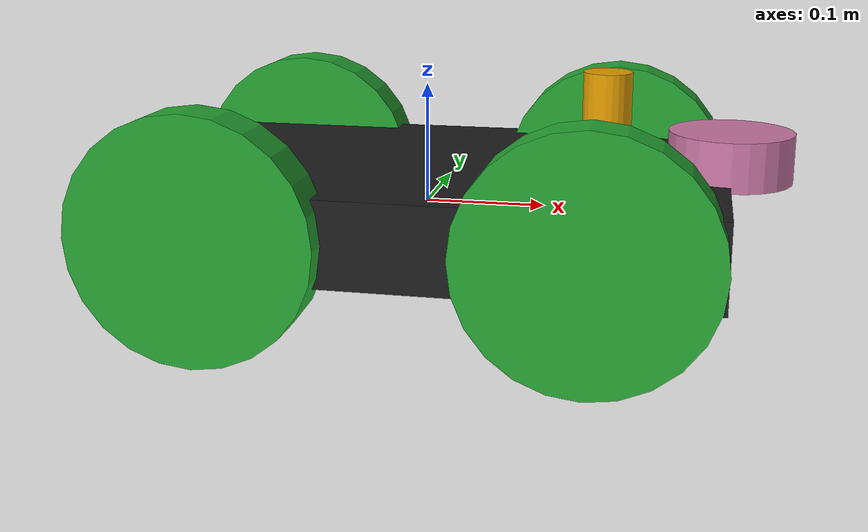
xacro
<?xml version="1.0" ?>

<robot name="skid_steer_bot" xmlns:xacro="http://www.ros.org/wiki/xacro">

  <xacro:include filename="$(find lidskid)/urdf/materials.xacro"/>
  <xacro:include filename="$(find lidskid)/urdf/steer.gazebo"/>

  <link name="base_link"/>

  <joint name="base_joint" type="fixed">
    <parent link="base_link"/>
    <child link="link_chassis"/>
  </joint>

  <!-- defining wheels -->
  <xacro:include filename="macro.xacro"/>

  <!-- Hokuyo Laser -->
  <link name="hokuyo_link">
    <collision>
      <origin xyz="0 0 0" rpy="0 0 0"/>
      <geometry>
    <cylinder length="0.04" radius="0.05"/>
      </geometry>
    </collision>

    <visual>
      <origin xyz="0 0 0" rpy="0 0 0"/>
      <geometry>
        <cylinder length="0.04" radius="0.05"/>
      </geometry>
    </visual>

    <inertial>
      <mass value="1e-3" />
      <inertia ixx="1e-3" ixy="0" ixz="0" iyy="1e-3" iyz="0" izz="1e-3" />
    </inertial>
  </link>

  <joint name="hokuyo_joint" type="fixed">
    <origin xyz="0.25 0 0.05" rpy="0 0 0"/>
    <parent link="link_chassis"/>
    <child link="hokuyo_link"/>
  </joint>
    <!-- GPS -->
  <link name="gps_link">
  </link>

  <joint name="gps_joint" type="fixed">
    <origin xyz="0.25 0 0.05" rpy="0 0 0"/>
    <parent link="link_chassis"/>
    <child link="gps_link"/>
  </joint>

  <!--Kinect Depth Camera-->
  <link name="kinect_link">
    <collision>
      <origin xyz="0 0 0" rpy="0 0 0"/>
      <geometry>
    <cylinder length="0.09" radius="0.02"/>
      </geometry>
    </collision>

    <visual>
       <origin xyz="0 0 0" rpy="0 0 0"/>
      <geometry>
    <cylinder length="0.09" radius="0.02"/>
     </geometry>
    </visual>

    <inertial>
      <mass value="1"/>
       <inertia ixx="1" ixy="0" ixz="0" iyy="1" iyz="0" izz="1" />
    </inertial>
  </link>

  <joint name="kinect_joint" type="fixed">
    <origin xyz="0.15 0 0.07" rpy="0 0 0"/>
    <parent link="link_chassis"/>
    <child link="kinect_link"/>
  </joint>

</robot>

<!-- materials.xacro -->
<robot name="skid_steer_bot" xmlns:xacro="http://www.ros.org/wiki/xacro">
  <material name="black">
    <color rgba="0.0 0.0 0.0 1.0"/>
  </material>
  <material name="blue">
    <color rgba="0.203125 0.23828125 0.28515625 1.0"/>
  </material>
  <material name="green">
    <color rgba="0.0 0.8 0.0 1.0"/>
  </material>
  <material name="grey">
    <color rgba="0.2 0.2 0.2 1.0"/>
  </material>
  <material name="orange">
    <color rgba="1.0 0.423529411765 0.0392156862745 1.0"/>
  </material>
  <material name="brown">
    <color rgba="0.870588235294 0.811764705882 0.764705882353 1.0"/>
  </material>
  <material name="red">
    <color rgba="0.80078125 0.12890625 0.1328125 1.0"/>
  </material>
  <material name="white">
    <color rgba="1.0 1.0 1.0 1.0"/>
  </material>

  <gazebo reference="link_chassis">
    <material>Gazebo/Black</material>
  </gazebo>
  <gazebo reference="link_front_left_wheel">
    <material>Gazebo/Green</material>
  </gazebo>
  <gazebo reference="link_front_right_wheel">
    <material>Gazebo/Green</material>
  </gazebo>
  <gazebo reference="link_back_right_wheel">
    <material>Gazebo/Green</material>
  </gazebo>
  <gazebo reference="link_back_left_wheel">
    <material>Gazebo/Green</material>
  </gazebo>

  </robot>

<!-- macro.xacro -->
<robot xmlns:xacro="http://ros.org/wiki/xacro">
  <xacro:property name="wheel_radius" value="0.1" />
  <xacro:property name="wheel_width" value="0.04" />

  <xacro:include filename="wheels.xacro" />

  <xacro:link_macro />

  <xacro:wheel suffix="front_left" mass="0.2" wheel_radius="${wheel_radius}"
    wheel_width="${wheel_width}" >
    <origin rpy="0 1.5707 1.5707" xyz="0 0 0"/>
    <origin xyz="0.15 0.15 0" rpy="0 0 0"/>
  </xacro:wheel>
  <xacro:wheel suffix="front_right" mass="0.2" wheel_radius="${wheel_radius}"
    wheel_width="${wheel_width}" >
    <origin rpy="0 1.5707 1.5707" xyz="0 0 0"/>
    <origin xyz="0.15 -0.15 0" rpy="0 0 0"/>
  </xacro:wheel>
  <xacro:wheel suffix="back_left" mass="0.2" wheel_radius="${wheel_radius}"
    wheel_width="${wheel_width}" >
    <origin rpy="0 1.5707 1.5707" xyz="0 0 0"/>
    <origin xyz="-0.15 0.15 0" rpy="0 0 0"/>
  </xacro:wheel>
  <xacro:wheel suffix="back_right" mass="0.2" wheel_radius="${wheel_radius}"
    wheel_width="${wheel_width}" >
    <origin rpy="0 1.5707 1.5707" xyz="0 0 0"/>
    <origin xyz="-0.15 -0.15 0" rpy="0 0 0"/>
  </xacro:wheel>
</robot>

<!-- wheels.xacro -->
<robot xmlns:xacro="http://ros.org/wiki/xacro">
  <xacro:macro name="wheel" params="suffix mass wheel_radius wheel_width
    *link_origin *joint_origin">
    <link name="link_${suffix}_wheel">
      <inertial>
        <mass value="${mass}"/>
        <xacro:insert_block name="link_origin"/>
        <inertia ixx="${(1/12)*mass*
          (3*wheel_radius*wheel_radius+wheel_width*wheel_width)}"
          ixy="0" ixz="0" iyy="${(1/12)*mass*
          (3*wheel_radius*wheel_radius+wheel_width*wheel_width)}"
          iyz="0" izz="${(1/2)*mass*wheel_radius*wheel_radius}"/>
      </inertial>
      <collision>
        <xacro:insert_block name="link_origin"/>
        <geometry>
          <cylinder length="${wheel_width}" radius="${wheel_radius}"/>
        </geometry>
      </collision>
      <visual>
        <xacro:insert_block name="link_origin"/>
        <geometry>
          <cylinder length="${wheel_width}" radius="${wheel_radius}"/>
        </geometry>
      </visual>
    </link>
    <joint name="${suffix}_wheel_joint" type="continuous">
      <xacro:insert_block name="joint_origin" />
      <child link="link_${suffix}_wheel"/>
      <parent link="base_link"/>
      <axis rpy="0 0 0" xyz="0 1 0"/>
      <limit effort="100" velocity="1"/>
    </joint>
  </xacro:macro>

  <xacro:macro name="link_macro">
    <link name="link_chassis">
      <!-- pose and inertial -->
      <pose>0 0 0.1 0 0 0</pose>
      <inertial>
        <mass value="5"/>
        <origin rpy="0 0 0" xyz="0 0 0.1"/>
        <inertia ixx="0.0395416666667" ixy="0" ixz="0" iyy="0.106208333333"
          iyz="0" izz="0.106208333333"/>
      </inertial>
      <!-- body -->
      <collision name="collision_chassis">
        <geometry>
          <box size="0.5 0.3 0.07"/>
        </geometry>
      </collision>
      <visual>
        <origin rpy="0 0 0" xyz="0 0 0"/>
        <geometry>
          <box size="0.5 0.3 0.07"/>
        </geometry>
      </visual>
    </link>
  </xacro:macro>

</robot>
